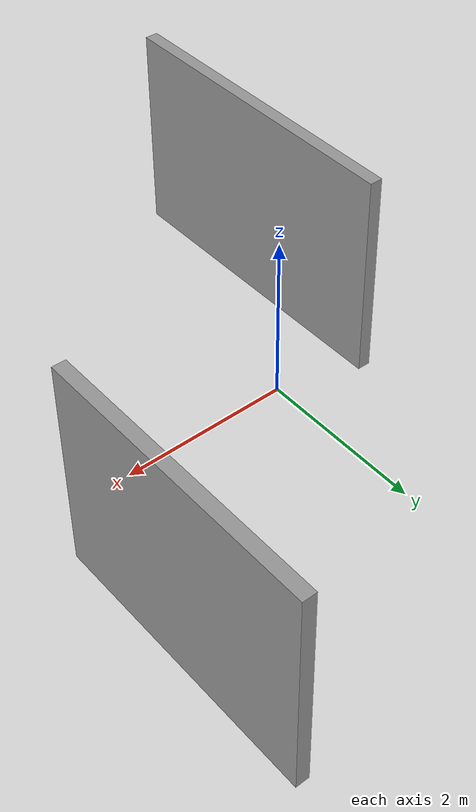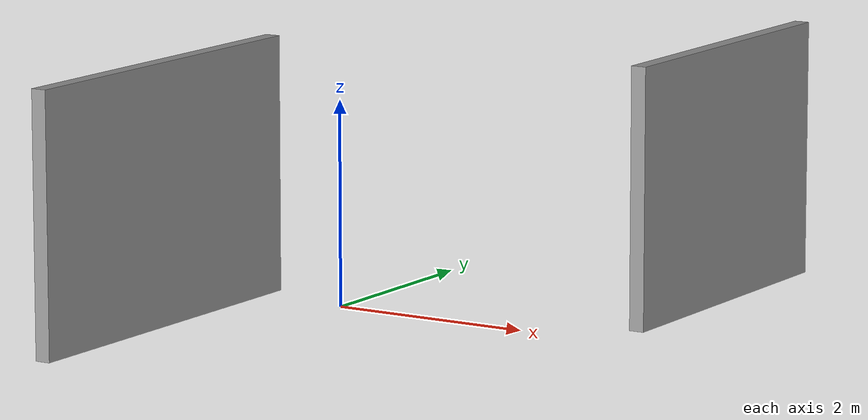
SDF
<?xml version='1.0'?>
<sdf version='1.6'>
  <model name='Inner_Walls_1'>
    <pose frame=''>0.977703 0.178143 0 0 -0 0</pose>
    <link name='Wall_7'>
      <collision name='Wall_7_Collision'>
        <geometry>
          <box>
            <size>3.75 0.15 2.5</size>
          </box>
        </geometry>
        <pose frame=''>0 0 1.25 0 -0 0</pose>
      </collision>
      <visual name='Wall_7_Visual'>
        <pose frame=''>0 0 1.25 0 -0 0</pose>
        <geometry>
          <box>
            <size>3.75 0.15 2.5</size>
          </box>
        </geometry>
        <material>
          <script>
            <uri>file://media/materials/scripts/gazebo.material</uri>
            <name>Gazebo/Grey</name>
          </script>
          <ambient>1 1 1 1</ambient>
        </material>
      </visual>
      <pose frame=''>-1.96193 -1.72843 0 0 -0 1.5708</pose>
    </link>
    <link name='Wall_9'>
      <collision name='Wall_9_Collision'>
        <geometry>
          <box>
            <size>3.25 0.15 2.5</size>
          </box>
        </geometry>
        <pose frame=''>0 0 1.25 0 -0 0</pose>
      </collision>
      <visual name='Wall_9_Visual'>
        <pose frame=''>0 0 1.25 0 -0 0</pose>
        <geometry>
          <box>
            <size>3.25 0.15 2.5</size>
          </box>
        </geometry>
        <material>
          <script>
            <uri>file://media/materials/scripts/gazebo.material</uri>
            <name>Gazebo/Grey</name>
          </script>
          <ambient>1 1 1 1</ambient>
        </material>
      </visual>
      <pose frame=''>1.96193 1.97843 0 0 0 -1.5708</pose>
    </link>
    <static>1</static>
  </model>
</sdf>
